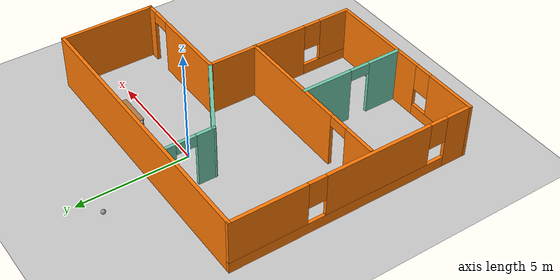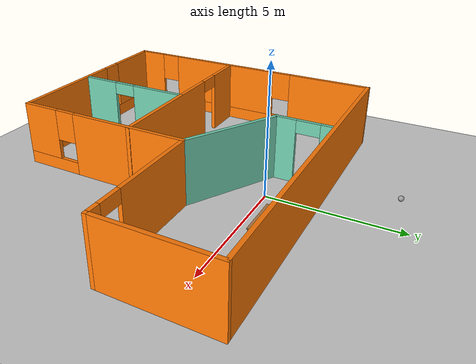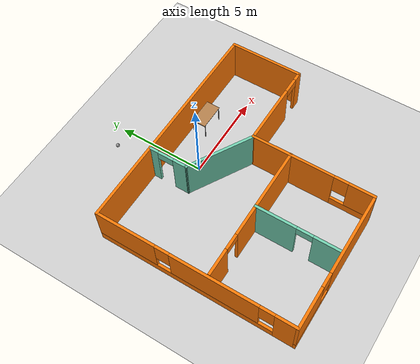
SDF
<sdf version="1.6">
 <world name="default">
  <model name="ground_plane">
   <static>1</static>
   <link name="link">
    <collision name="collision">
     <geometry><plane><normal>0 0 1</normal><size>100 100</size></plane></geometry>
     <surface>
      <contact><collide_bitmask>65535</collide_bitmask></contact>
      <friction><ode><mu>100</mu><mu2>50</mu2></ode></friction>
     </surface>
    </collision>
    <visual name="visual">
     <cast_shadows>0</cast_shadows>
     <geometry><plane><normal>0 0 1</normal><size>100 100</size></plane></geometry>
     <material>
      <script><uri>file://media/materials/scripts/gazebo.material</uri><name>Gazebo/Grey</name></script>
     </material>
    </visual>
   </link>
  </model>
  <model name="building3">
   <pose>0.38939 -3.60389 0 0 -0 0</pose>
   <link name="Wall_1">
    <pose>-2.5 -5.47924 0 0 -0 3.14159</pose>
    <visual name="Wall_1_Visual_0">
     <pose>-1.57403 0 1.25 0 -0 0</pose>
     <geometry><box><size>4.60194 0.15 2.5</size></box></geometry>
     <material>
      <script><uri>file://media/materials/scripts/gazebo.material</uri><name>Gazebo/Grey</name></script>
      <ambient>0.996078 0.47451 0.0196078 1</ambient>
     </material>
     <meta><layer>0</layer></meta>
    </visual>
    <collision name="Wall_1_Collision_0">
     <geometry><box><size>4.60194 0.15 2.5</size></box></geometry>
     <pose>-1.57403 0 1.25 0 -0 0</pose>
    </collision>
    <visual name="Wall_1_Visual_1">
     <pose>2.30097 0 0.25 0 -0 0</pose>
     <geometry><box><size>3.14806 0.15 0.5</size></box></geometry>
     <material>
      <script><uri>file://media/materials/scripts/gazebo.material</uri><name>Gazebo/Grey</name></script>
      <ambient>0.996078 0.47451 0.0196078 1</ambient>
     </material>
     <meta><layer>0</layer></meta>
    </visual>
    <collision name="Wall_1_Collision_1">
     <geometry><box><size>3.14806 0.15 0.5</size></box></geometry>
     <pose>2.30097 0 0.25 0 -0 0</pose>
    </collision>
    <visual name="Wall_1_Visual_2">
     <pose>2.70097 0 1.5 0 -0 0</pose>
     <geometry><box><size>2.34806 0.15 2</size></box></geometry>
     <material>
      <script><uri>file://media/materials/scripts/gazebo.material</uri><name>Gazebo/Grey</name></script>
      <ambient>0.996078 0.47451 0.0196078 1</ambient>
     </material>
     <meta><layer>0</layer></meta>
    </visual>
    <collision name="Wall_1_Collision_2">
     <geometry><box><size>2.34806 0.15 2</size></box></geometry>
     <pose>2.70097 0 1.5 0 -0 0</pose>
    </collision>
    <visual name="Wall_1_Visual_3">
     <pose>1.12694 0 1.9 0 -0 0</pose>
     <geometry><box><size>0.8 0.15 1.2</size></box></geometry>
     <material>
      <script><uri>file://media/materials/scripts/gazebo.material</uri><name>Gazebo/Grey</name></script>
      <ambient>0.996078 0.47451 0.0196078 1</ambient>
     </material>
     <meta><layer>0</layer></meta>
    </visual>
    <collision name="Wall_1_Collision_3">
     <geometry><box><size>0.8 0.15 1.2</size></box></geometry>
     <pose>1.12694 0 1.9 0 -0 0</pose>
    </collision>
   </link>
   <link name="Wall_11">
    <collision name="Wall_11_Collision">
     <geometry><box><size>4 0.15 2.5</size></box></geometry>
     <pose>0 0 1.25 0 -0 0</pose>
    </collision>
    <visual name="Wall_11_Visual">
     <pose>0 0 1.25 0 -0 0</pose>
     <geometry><box><size>4 0.15 2.5</size></box></geometry>
     <material>
      <script><uri>file://media/materials/scripts/gazebo.material</uri><name>Gazebo/Grey</name></script>
      <ambient>0.435294 0.796078 0.67451 1</ambient>
     </material>
     <meta><layer>0</layer></meta>
    </visual>
    <pose>-0.217099 2.34174 0 0 -0 2.61799</pose>
   </link>
   <link name="Wall_12">
    <pose>-1.8842 4.35424 0 0 -0 1.5708</pose>
    <visual name="Wall_12_Visual_0">
     <pose>-0.70293 0 1.25 0 -0 0</pose>
     <geometry><box><size>0.844141 0.15 2.5</size></box></geometry>
     <material>
      <script><uri>file://media/materials/scripts/gazebo.material</uri><name>Gazebo/Grey</name></script>
      <ambient>0.435294 0.796078 0.67451 1</ambient>
     </material>
     <meta><layer>0</layer></meta>
    </visual>
    <collision name="Wall_12_Collision_0">
     <geometry><box><size>0.844141 0.15 2.5</size></box></geometry>
     <pose>-0.70293 0 1.25 0 -0 0</pose>
    </collision>
    <visual name="Wall_12_Visual_1">
     <pose>0.87207 0 1.25 0 -0 0</pose>
     <geometry><box><size>0.505859 0.15 2.5</size></box></geometry>
     <material>
      <script><uri>file://media/materials/scripts/gazebo.material</uri><name>Gazebo/Grey</name></script>
      <ambient>0.435294 0.796078 0.67451 1</ambient>
     </material>
     <meta><layer>0</layer></meta>
    </visual>
    <collision name="Wall_12_Collision_1">
     <geometry><box><size>0.505859 0.15 2.5</size></box></geometry>
     <pose>0.87207 0 1.25 0 -0 0</pose>
    </collision>
    <visual name="Wall_12_Visual_2">
     <pose>0.169141 0 2.25 0 -0 0</pose>
     <geometry><box><size>0.9 0.15 0.5</size></box></geometry>
     <material>
      <script><uri>file://media/materials/scripts/gazebo.material</uri><name>Gazebo/Grey</name></script>
      <ambient>0.435294 0.796078 0.67451 1</ambient>
     </material>
     <meta><layer>0</layer></meta>
    </visual>
    <collision name="Wall_12_Collision_2">
     <geometry><box><size>0.9 0.15 0.5</size></box></geometry>
     <pose>0.169141 0 2.25 0 -0 0</pose>
    </collision>
   </link>
   <link name="Wall_14">
    <pose>-2.01275 -3.10344 0 0 0 -1.5708</pose>
    <visual name="Wall_14_Visual_0">
     <pose>-1.21734 0 1.25 0 -0 0</pose>
     <geometry><box><size>2.31532 0.15 2.5</size></box></geometry>
     <material>
      <script><uri>file://media/materials/scripts/gazebo.material</uri><name>Gazebo/Grey</name></script>
      <ambient>0.435294 0.796078 0.67451 1</ambient>
     </material>
     <meta><layer>0</layer></meta>
    </visual>
    <collision name="Wall_14_Collision_0">
     <geometry><box><size>2.31532 0.15 2.5</size></box></geometry>
     <pose>-1.21734 0 1.25 0 -0 0</pose>
    </collision>
    <visual name="Wall_14_Visual_1">
     <pose>1.60766 0 1.25 0 -0 0</pose>
     <geometry><box><size>1.53468 0.15 2.5</size></box></geometry>
     <material>
      <script><uri>file://media/materials/scripts/gazebo.material</uri><name>Gazebo/Grey</name></script>
      <ambient>0.435294 0.796078 0.67451 1</ambient>
     </material>
     <meta><layer>0</layer></meta>
    </visual>
    <collision name="Wall_14_Collision_1">
     <geometry><box><size>1.53468 0.15 2.5</size></box></geometry>
     <pose>1.60766 0 1.25 0 -0 0</pose>
    </collision>
    <visual name="Wall_14_Visual_2">
     <pose>0.390316 0 2.25 0 -0 0</pose>
     <geometry><box><size>0.9 0.15 0.5</size></box></geometry>
     <material>
      <script><uri>file://media/materials/scripts/gazebo.material</uri><name>Gazebo/Grey</name></script>
      <ambient>0.435294 0.796078 0.67451 1</ambient>
     </material>
     <meta><layer>0</layer></meta>
    </visual>
    <collision name="Wall_14_Collision_2">
     <geometry><box><size>0.9 0.15 0.5</size></box></geometry>
     <pose>0.390316 0 2.25 0 -0 0</pose>
    </collision>
   </link>
   <link name="Wall_2">
    <pose>-6.3 0.017689 0 0 -0 1.5708</pose>
    <visual name="Wall_2_Visual_0">
     <pose>-4.93923 0 1.25 0 -0 0</pose>
     <geometry><box><size>1.19466 0.15 2.5</size></box></geometry>
     <material>
      <script><uri>file://media/materials/scripts/gazebo.material</uri><name>Gazebo/Grey</name></script>
      <ambient>0.996078 0.47451 0.0196078 1</ambient>
     </material>
     <meta><layer>0</layer></meta>
    </visual>
    <collision name="Wall_2_Collision_0">
     <geometry><box><size>1.19466 0.15 2.5</size></box></geometry>
     <pose>-4.93923 0 1.25 0 -0 0</pose>
    </collision>
    <visual name="Wall_2_Visual_1">
     <pose>0.597328 0 0.25 0 -0 0</pose>
     <geometry><box><size>9.87845 0.15 0.5</size></box></geometry>
     <material>
      <script><uri>file://media/materials/scripts/gazebo.material</uri><name>Gazebo/Grey</name></script>
      <ambient>0.996078 0.47451 0.0196078 1</ambient>
     </material>
     <meta><layer>0</layer></meta>
    </visual>
    <collision name="Wall_2_Collision_1">
     <geometry><box><size>9.87845 0.15 0.5</size></box></geometry>
     <pose>0.597328 0 0.25 0 -0 0</pose>
    </collision>
    <visual name="Wall_2_Visual_2">
     <pose>-1.11707 0 1.5 0 -0 0</pose>
     <geometry><box><size>4.84966 0.15 2</size></box></geometry>
     <material>
      <script><uri>file://media/materials/scripts/gazebo.material</uri><name>Gazebo/Grey</name></script>
      <ambient>0.996078 0.47451 0.0196078 1</ambient>
     </material>
     <meta><layer>0</layer></meta>
    </visual>
    <collision name="Wall_2_Collision_2">
     <geometry><box><size>4.84966 0.15 2</size></box></geometry>
     <pose>-1.11707 0 1.5 0 -0 0</pose>
    </collision>
    <visual name="Wall_2_Visual_3">
     <pose>3.82216 0 1.5 0 -0 0</pose>
     <geometry><box><size>3.42879 0.15 2</size></box></geometry>
     <material>
      <script><uri>file://media/materials/scripts/gazebo.material</uri><name>Gazebo/Grey</name></script>
      <ambient>0.996078 0.47451 0.0196078 1</ambient>
     </material>
     <meta><layer>0</layer></meta>
    </visual>
    <collision name="Wall_2_Collision_3">
     <geometry><box><size>3.42879 0.15 2</size></box></geometry>
     <pose>3.82216 0 1.5 0 -0 0</pose>
    </collision>
    <visual name="Wall_2_Visual_4">
     <pose>-3.9419 0 1.9 0 -0 0</pose>
     <geometry><box><size>0.8 0.15 1.2</size></box></geometry>
     <material>
      <script><uri>file://media/materials/scripts/gazebo.material</uri><name>Gazebo/Grey</name></script>
      <ambient>0.996078 0.47451 0.0196078 1</ambient>
     </material>
     <meta><layer>0</layer></meta>
    </visual>
    <collision name="Wall_2_Collision_4">
     <geometry><box><size>0.8 0.15 1.2</size></box></geometry>
     <pose>-3.9419 0 1.9 0 -0 0</pose>
    </collision>
    <visual name="Wall_2_Visual_5">
     <pose>1.70777 0 1.9 0 -0 0</pose>
     <geometry><box><size>0.8 0.15 1.2</size></box></geometry>
     <material>
      <script><uri>file://media/materials/scripts/gazebo.material</uri><name>Gazebo/Grey</name></script>
      <ambient>0.996078 0.47451 0.0196078 1</ambient>
     </material>
     <meta><layer>0</layer></meta>
    </visual>
    <collision name="Wall_2_Collision_5">
     <geometry><box><size>0.8 0.15 1.2</size></box></geometry>
     <pose>1.70777 0 1.9 0 -0 0</pose>
    </collision>
   </link>
   <link name="Wall_3">
    <collision name="Wall_3_Collision">
     <geometry><box><size>12.75 0.15 2.5</size></box></geometry>
     <pose>0 0 1.25 0 -0 0</pose>
    </collision>
    <visual name="Wall_3_Visual">
     <pose>0 0 1.25 0 -0 0</pose>
     <geometry><box><size>12.75 0.15 2.5</size></box></geometry>
     <material>
      <script><uri>file://media/materials/scripts/gazebo.material</uri><name>Gazebo/Grey</name></script>
      <ambient>0.996078 0.47451 0.0196078 1</ambient>
     </material>
     <meta><layer>0</layer></meta>
    </visual>
    <pose>0 5.47924 0 0 -0 0</pose>
   </link>
   <link name="Wall_5">
    <collision name="Wall_5_Collision">
     <geometry><box><size>4.25 0.15 2.5</size></box></geometry>
     <pose>0 0 1.25 0 -0 0</pose>
    </collision>
    <visual name="Wall_5_Visual">
     <pose>0 0 1.25 0 -0 0</pose>
     <geometry><box><size>4.25 0.15 2.5</size></box></geometry>
     <material>
      <script><uri>file://media/materials/scripts/gazebo.material</uri><name>Gazebo/Grey</name></script>
      <ambient>0.996078 0.47451 0.0196078 1</ambient>
     </material>
     <meta><layer>0</layer></meta>
    </visual>
    <pose>6.3 3.42924 0 0 0 -1.5708</pose>
   </link>
   <link name="Wall_6">
    <pose>3.875 1.37924 0 0 -0 3.14159</pose>
    <visual name="Wall_6_Visual_0">
     <pose>-2.21686 0 1.25 0 -0 0</pose>
     <geometry><box><size>0.566286 0.15 2.5</size></box></geometry>
     <material>
      <script><uri>file://media/materials/scripts/gazebo.material</uri><name>Gazebo/Grey</name></script>
      <ambient>0.996078 0.47451 0.0196078 1</ambient>
     </material>
     <meta><layer>0</layer></meta>
    </visual>
    <collision name="Wall_6_Collision_0">
     <geometry><box><size>0.566286 0.15 2.5</size></box></geometry>
     <pose>-2.21686 0 1.25 0 -0 0</pose>
    </collision>
    <visual name="Wall_6_Visual_1">
     <pose>0.733143 0 1.25 0 -0 0</pose>
     <geometry><box><size>3.53371 0.15 2.5</size></box></geometry>
     <material>
      <script><uri>file://media/materials/scripts/gazebo.material</uri><name>Gazebo/Grey</name></script>
      <ambient>0.996078 0.47451 0.0196078 1</ambient>
     </material>
     <meta><layer>0</layer></meta>
    </visual>
    <collision name="Wall_6_Collision_1">
     <geometry><box><size>3.53371 0.15 2.5</size></box></geometry>
     <pose>0.733143 0 1.25 0 -0 0</pose>
    </collision>
    <visual name="Wall_6_Visual_2">
     <pose>-1.48371 0 2.25 0 -0 0</pose>
     <geometry><box><size>0.9 0.15 0.5</size></box></geometry>
     <material>
      <script><uri>file://media/materials/scripts/gazebo.material</uri><name>Gazebo/Grey</name></script>
      <ambient>0.996078 0.47451 0.0196078 1</ambient>
     </material>
     <meta><layer>0</layer></meta>
    </visual>
    <collision name="Wall_6_Collision_2">
     <geometry><box><size>0.9 0.15 0.5</size></box></geometry>
     <pose>-1.48371 0 2.25 0 -0 0</pose>
    </collision>
   </link>
   <link name="Wall_7">
    <pose>1.45 -2.04576 0 0 0 -1.5708</pose>
    <visual name="Wall_7_Visual_0">
     <pose>-1.14529 0 1.25 0 -0 0</pose>
     <geometry><box><size>4.70942 0.15 2.5</size></box></geometry>
     <material>
      <script><uri>file://media/materials/scripts/gazebo.material</uri><name>Gazebo/Grey</name></script>
      <ambient>0.996078 0.47451 0.0196078 1</ambient>
     </material>
     <meta><layer>0</layer></meta>
    </visual>
    <collision name="Wall_7_Collision_0">
     <geometry><box><size>4.70942 0.15 2.5</size></box></geometry>
     <pose>-1.14529 0 1.25 0 -0 0</pose>
    </collision>
    <visual name="Wall_7_Visual_1">
     <pose>2.35471 0 0.25 0 -0 0</pose>
     <geometry><box><size>2.29058 0.15 0.5</size></box></geometry>
     <material>
      <script><uri>file://media/materials/scripts/gazebo.material</uri><name>Gazebo/Grey</name></script>
      <ambient>0.996078 0.47451 0.0196078 1</ambient>
     </material>
     <meta><layer>0</layer></meta>
    </visual>
    <collision name="Wall_7_Collision_1">
     <geometry><box><size>2.29058 0.15 0.5</size></box></geometry>
     <pose>2.35471 0 0.25 0 -0 0</pose>
    </collision>
    <visual name="Wall_7_Visual_2">
     <pose>2.75471 0 1.5 0 -0 0</pose>
     <geometry><box><size>1.49058 0.15 2</size></box></geometry>
     <material>
      <script><uri>file://media/materials/scripts/gazebo.material</uri><name>Gazebo/Grey</name></script>
      <ambient>0.996078 0.47451 0.0196078 1</ambient>
     </material>
     <meta><layer>0</layer></meta>
    </visual>
    <collision name="Wall_7_Collision_2">
     <geometry><box><size>1.49058 0.15 2</size></box></geometry>
     <pose>2.75471 0 1.5 0 -0 0</pose>
    </collision>
    <visual name="Wall_7_Visual_3">
     <pose>1.60942 0 1.9 0 -0 0</pose>
     <geometry><box><size>0.8 0.15 1.2</size></box></geometry>
     <material>
      <script><uri>file://media/materials/scripts/gazebo.material</uri><name>Gazebo/Grey</name></script>
      <ambient>0.996078 0.47451 0.0196078 1</ambient>
     </material>
     <meta><layer>0</layer></meta>
    </visual>
    <collision name="Wall_7_Collision_3">
     <geometry><box><size>0.8 0.15 1.2</size></box></geometry>
     <pose>1.60942 0 1.9 0 -0 0</pose>
    </collision>
   </link>
   <link name="Wall_9">
    <pose>-2.33067 -0.793195 0 0 -0 3.14159</pose>
    <visual name="Wall_9_Visual_0">
     <pose>-1.20379 0 1.25 0 -0 0</pose>
     <geometry><box><size>5.34241 0.15 2.5</size></box></geometry>
     <material>
      <script><uri>file://media/materials/scripts/gazebo.material</uri><name>Gazebo/Grey</name></script>
      <ambient>0.996078 0.47451 0.0196078 1</ambient>
     </material>
     <meta><layer>0</layer></meta>
    </visual>
    <collision name="Wall_9_Collision_0">
     <geometry><box><size>5.34241 0.15 2.5</size></box></geometry>
     <pose>-1.20379 0 1.25 0 -0 0</pose>
    </collision>
    <visual name="Wall_9_Visual_1">
     <pose>3.12121 0 1.25 0 -0 0</pose>
     <geometry><box><size>1.50758 0.15 2.5</size></box></geometry>
     <material>
      <script><uri>file://media/materials/scripts/gazebo.material</uri><name>Gazebo/Grey</name></script>
      <ambient>0.996078 0.47451 0.0196078 1</ambient>
     </material>
     <meta><layer>0</layer></meta>
    </visual>
    <collision name="Wall_9_Collision_1">
     <geometry><box><size>1.50758 0.15 2.5</size></box></geometry>
     <pose>3.12121 0 1.25 0 -0 0</pose>
    </collision>
    <visual name="Wall_9_Visual_2">
     <pose>1.91742 0 2.25 0 -0 0</pose>
     <geometry><box><size>0.9 0.15 0.5</size></box></geometry>
     <material>
      <script><uri>file://media/materials/scripts/gazebo.material</uri><name>Gazebo/Grey</name></script>
      <ambient>0.996078 0.47451 0.0196078 1</ambient>
     </material>
     <meta><layer>0</layer></meta>
    </visual>
    <collision name="Wall_9_Collision_2">
     <geometry><box><size>0.9 0.15 0.5</size></box></geometry>
     <pose>1.91742 0 2.25 0 -0 0</pose>
    </collision>
   </link>
   <static>1</static>
  </model>
  <model name="table_1">
   <static>1</static>
   <link name="link">
    <collision name="surface">
     <pose>0 0 1 0 -0 0</pose>
     <geometry><box><size>1.5 0.8 0.03</size></box></geometry>
     <surface><friction><ode><mu>0.6</mu><mu2>0.6</mu2></ode></friction></surface>
    </collision>
    <visual name="visual1">
     <pose>0 0 1 0 -0 0</pose>
     <geometry><box><size>1.5 0.8 0.03</size></box></geometry>
     <material>
      <script><uri>file://media/materials/scripts/gazebo.material</uri><name>Gazebo/Wood</name></script>
     </material>
    </visual>
    <collision name="front_left_leg">
     <pose>0.68 0.38 0.5 0 -0 0</pose>
     <geometry><cylinder><radius>0.02</radius><length>1</length></cylinder></geometry>
    </collision>
    <visual name="front_left_leg">
     <pose>0.68 0.38 0.5 0 -0 0</pose>
     <geometry><cylinder><radius>0.02</radius><length>1</length></cylinder></geometry>
     <material>
      <script><uri>file://media/materials/scripts/gazebo.material</uri><name>Gazebo/Grey</name></script>
     </material>
    </visual>
    <collision name="front_right_leg">
     <pose>0.68 -0.38 0.5 0 -0 0</pose>
     <geometry><cylinder><radius>0.02</radius><length>1</length></cylinder></geometry>
    </collision>
    <visual name="front_right_leg">
     <pose>0.68 -0.38 0.5 0 -0 0</pose>
     <geometry><cylinder><radius>0.02</radius><length>1</length></cylinder></geometry>
     <material>
      <script><uri>file://media/materials/scripts/gazebo.material</uri><name>Gazebo/Grey</name></script>
     </material>
    </visual>
    <collision name="back_right_leg">
     <pose>-0.68 -0.38 0.5 0 -0 0</pose>
     <geometry><cylinder><radius>0.02</radius><length>1</length></cylinder></geometry>
    </collision>
    <visual name="back_right_leg">
     <pose>-0.68 -0.38 0.5 0 -0 0</pose>
     <geometry><cylinder><radius>0.02</radius><length>1</length></cylinder></geometry>
     <material>
      <script><uri>file://media/materials/scripts/gazebo.material</uri><name>Gazebo/Grey</name></script>
     </material>
    </visual>
    <collision name="back_left_leg">
     <pose>-0.68 0.38 0.5 0 -0 0</pose>
     <geometry><cylinder><radius>0.02</radius><length>1</length></cylinder></geometry>
    </collision>
    <visual name="back_left_leg">
     <pose>-0.68 0.38 0.5 0 -0 0</pose>
     <geometry><cylinder><radius>0.02</radius><length>1</length></cylinder></geometry>
     <material>
      <script><uri>file://media/materials/scripts/gazebo.material</uri><name>Gazebo/Grey</name></script>
     </material>
    </visual>
   </link>
   <pose>2.67876 1.25696 0 0 -0 0</pose>
  </model>
  <model name="myball2">
   <link name="link_1">
    <inertial>
     <mass>1</mass>
     <inertia><ixx>0.1</ixx><ixy>0</ixy><ixz>0</ixz><iyy>0.1</iyy><iyz>0</iyz><izz>0.1</izz></inertia>
    </inertial>
    <visual name="visual">
     <geometry><sphere><radius>0.1</radius></sphere></geometry>
     <material>
      <lighting>1</lighting>
      <script><uri>file://media/materials/scripts/gazebo.material</uri><name>Gazebo/Grey</name></script>
      <shader type="pixel"><normal_map>__default__</normal_map></shader>
      <ambient>1 1 1 1</ambient>
      <diffuse>1 1 1 1</diffuse>
      <specular>1 1 1 1</specular>
      <emissive>1 1 1 1</emissive>
     </material>
    </visual>
    <collision name="collision">
     <geometry><sphere><radius>0.1</radius></sphere></geometry>
     <surface>
      <friction>
       <ode><mu>1</mu><mu2>1</mu2><fdir1>0 0 0</fdir1><slip1>0</slip1><slip2>0</slip2></ode>
       <torsional>
        <coefficient>1</coefficient>
        <patch_radius>0</patch_radius>
        <surface_radius>0</surface_radius>
        <use_patch_radius>1</use_patch_radius>
        <ode><slip>0</slip></ode>
       </torsional>
      </friction>
      <bounce><restitution_coefficient>0</restitution_coefficient><threshold>1e+06</threshold></bounce>
      <contact>
       <collide_without_contact>0</collide_without_contact>
       <collide_without_contact_bitmask>1</collide_without_contact_bitmask>
       <collide_bitmask>1</collide_bitmask>
       <ode>
        <soft_cfm>0</soft_cfm>
        <soft_erp>0.2</soft_erp>
        <kp>1e+13</kp>
        <kd>1</kd>
        <max_vel>0.01</max_vel>
        <min_depth>0</min_depth>
       </ode>
       <bullet>
        <split_impulse>1</split_impulse>
        <split_impulse_penetration_threshold>-0.01</split_impulse_penetration_threshold>
        <soft_cfm>0</soft_cfm>
        <soft_erp>0.2</soft_erp>
        <kp>1e+13</kp>
        <kd>1</kd>
       </bullet>
      </contact>
     </surface>
    </collision>
   </link>
   <static>0</static>
   <pose>-1.26952 4.40995 0.5 0 -0 0</pose>
  </model>
 </world>
</sdf>
